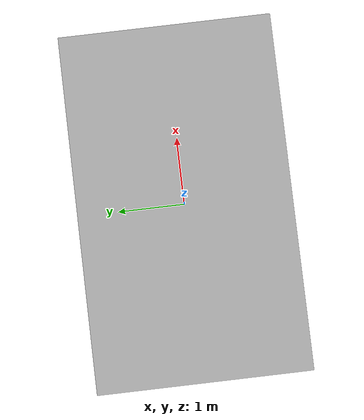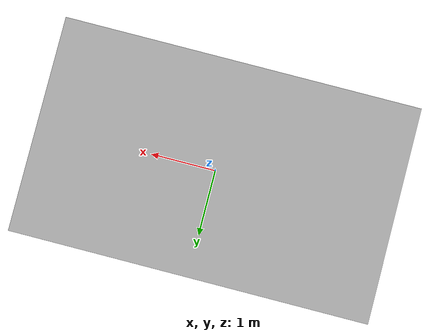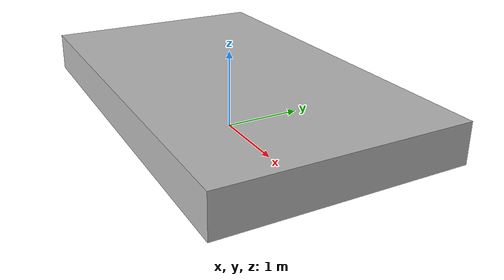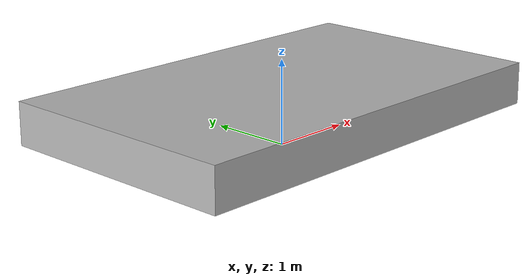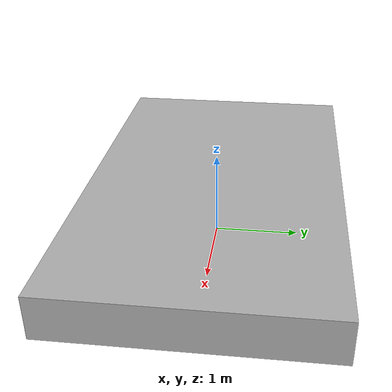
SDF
<?xml version='1.0'?>
<sdf version="1.4">
  <model name="my_model">
    <pose>0 0 0.5 0 0 0</pose>
    <static>true</static>
    <link name="link">
      <inertial>
        <mass>1.0</mass>
        <inertia> <!-- inertias are tricky to compute -->
          <!-- http://gazebosim.org/tutorials?tut=inertia&cat=build_robot -->
          <ixx>0.083</ixx>       <!-- for a box: ixx = 0.083 * mass * (y*y + z*z) -->
          <ixy>0.0</ixy>         <!-- for a box: ixy = 0 -->
          <ixz>0.0</ixz>         <!-- for a box: ixz = 0 -->
          <iyy>0.083</iyy>       <!-- for a box: iyy = 0.083 * mass * (x*x + z*z) -->
          <iyz>0.0</iyz>         <!-- for a box: iyz = 0 -->
          <izz>0.083</izz>       <!-- for a box: izz = 0.083 * mass * (x*x + y*y) -->
        </inertia>
      </inertial>
      <collision name="collision">
        <geometry>
          <box>
            <size>5 3 0.50</size>
          </box>
        </geometry>
        <surface>
      </surface>
      </collision>
      <visual name="visual">
        <geometry>
          <box>
            <size>5 3 0.50</size>
          </box>
        </geometry>
      </visual>
    </link>
  </model>
</sdf>
